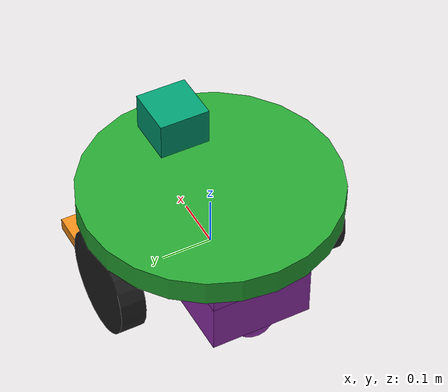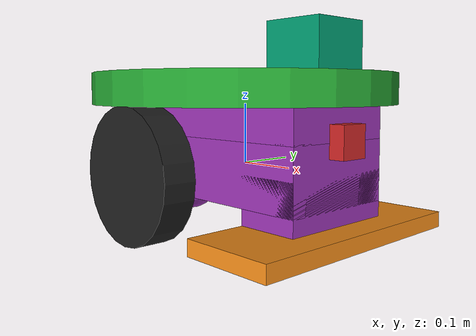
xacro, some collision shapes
<?xml version='1.0'?>

<robot name="my_robot" xmlns:xacro="http://www.ros.org/wiki/xacro">

  <xacro:include filename="$(find my_robot)/urdf/my_robot.gazebo" />

  <link name="robot_footprint"></link>

  <joint name="robot_footprint_joint" type="fixed">
    <origin xyz="0 0 0" rpy="0 0 0" />
    <parent link="robot_footprint"/>
    <child link="chassis" />
  </joint>

  <link name='chassis'>
    <pose>0 0 0.1 0 0 0</pose>

    <inertial>
      <mass value="15.0"/>
      <origin xyz="0.0 0 0" rpy=" 0 0 0"/>
      <inertia
          ixx="0.1" ixy="0" ixz="0"
          iyy="0.1" iyz="0"
          izz="0.1"
      />
    </inertial>

    <collision name='collision'>
      <origin xyz="0 0 0" rpy=" 0 0 0"/>
      <geometry>
        <box size=".4 .2 .1"/>
      </geometry>
    </collision>

    <visual name='chassis_visual'>
      <origin xyz="0 0 0" rpy=" 0 0 0"/>
      <geometry>
        <box size=".4 .2 .1"/>
      </geometry>
    </visual>

    <collision name='back_caster_collision'>
      <origin xyz="-0.15 0 -0.05" rpy=" 0 0 0"/>
      <geometry>
        <sphere radius="0.0499"/>
      </geometry>
    </collision>

    <visual name='back_caster_visual'>
      <origin xyz="-0.15 0 -0.05" rpy=" 0 0 0"/>
      <geometry>
        <sphere radius="0.05"/>
      </geometry>
    </visual>

  </link>

  <link name='left_wheel'>
    <inertial>
      <mass value="5.0"/>
      <origin xyz="0.0 0 0" rpy=" 0 1.5707 1.5707"/>
      <inertia
          ixx="0.1" ixy="0" ixz="0"
          iyy="0.1" iyz="0"
          izz="0.1"
      />
    </inertial>

    <collision name='collision'>
      <origin xyz="0 0 0" rpy=" 0 1.5707 1.5707"/>
      <geometry>
        <cylinder radius='.101' length='.05'/>
      </geometry>
    </collision>

    <visual name='left_wheel_visual'>
      <origin xyz="0 0 0" rpy=" 0 1.5707 1.5707"/>
      <geometry>
        <cylinder radius='.101' length='.05'/>
      </geometry>
    </visual>
  </link>

  <joint type="continuous" name="left_wheel_hinge">
    <origin xyz="0 0.21 0" rpy="0 0 0"/>
    <child link="left_wheel"/>
    <parent link="chassis"/>
    <axis xyz="0 1 0" rpy="0 0 0"/>
    <limit effort="10000" velocity="1000"/>
    <dynamics damping="1.0" friction="1.0"/>
  </joint>

  <link name='right_wheel'>
    <inertial>
      <mass value="5.0"/>
      <origin xyz="0.0 0 0" rpy=" 0 1.5707 1.5707"/>
      <inertia
          ixx="0.1" ixy="0" ixz="0"
          iyy="0.1" iyz="0"
          izz="0.1"
      />
    </inertial>

    <collision name='collision'>
      <origin xyz="0 0 0" rpy=" 0 1.5707 1.5707"/>
      <geometry>
        <cylinder radius='.101' length='.05'/>
      </geometry>
    </collision>

    <visual name='right_wheel_visual'>
      <origin xyz="0 0 0" rpy=" 0 1.5707 1.5707"/>
      <geometry>
        <cylinder radius='.101' length='.05'/>
      </geometry>
    </visual>
  </link>

  <joint type="continuous" name="right_wheel_hinge">
    <origin xyz="0 -0.21 0" rpy="0 0 0"/>
    <child link="right_wheel"/>
    <parent link="chassis"/>
    <axis xyz="0 1 0" rpy="0 0 0"/>
    <limit effort="10000" velocity="1000"/>
    <dynamics damping="1.0" friction="1.0"/>
  </joint>

  <link name='top1'>
    <pose>0 0 0.1 0 0 0</pose>
    <inertial>
      <mass value="0.1"/>
      <origin xyz="0.0 0 0" rpy=" 0 0 0"/>
      <inertia
          ixx="1e-6" ixy="0" ixz="0"
          iyy="1e-6" iyz="0"
          izz="1e-6"
      />
    </inertial>

    <collision name='collision'>
      <origin xyz="0 0 0" rpy=" 0 0 0"/>
      <geometry>
        <box size=".4 .2 .1"/>
      </geometry>
    </collision>

    <visual name='top1_visual'>
      <origin xyz="0 0 0" rpy=" 0 0 0"/>
      <geometry>
        <box size=".4 .2 .1"/>
      </geometry>
    </visual>
  </link>

  <joint type="fixed" name="top1_joint">
    <origin xyz="0 0 0.098" rpy="0 0 0"/>
    <child link="top1"/>
    <parent link="chassis"/>
    <axis xyz="0 1 0" rpy="0 0 0"/>
  </joint>

  <link name='top_cylinder'>
    <pose>0 0 0.1 0 0 0</pose>
    <inertial>
      <mass value="0.1"/>
      <origin xyz="0.0 0 0" rpy=" 0 0 0"/>
      <inertia
          ixx="1e-6" ixy="0" ixz="0"
          iyy="1e-6" iyz="0"
          izz="1e-6"
      />
    </inertial>

    <collision name='collision'>
      <origin xyz="0 0 0" rpy=" 0 0 0"/>
      <geometry>
        <cylinder radius='.25' length='.05'/>
      </geometry>
    </collision>

    <visual name='top_cylinder_visual'>
      <origin xyz="0 0 0" rpy=" 0 0 0"/>
      <geometry>
        <cylinder radius='.25' length='.05'/>
      </geometry>
    </visual>

  </link>

  <joint type="fixed" name="top_cylinder_joint">
    <origin xyz="0 0 0.125" rpy="0 0 0"/>
    <child link="top_cylinder"/>
    <parent link="chassis"/>
    <axis xyz="0 1 0" rpy="0 0 0"/>
  </joint>

  <link name='front_beam'>

    <pose>0 0 0.1 0 0 0</pose>
    <inertial>
      <mass value="0.1"/>
      <origin xyz="0.0 0 0" rpy=" 0 0 0"/>
      <inertia
          ixx="1e-6" ixy="0" ixz="0"
          iyy="1e-6" iyz="0"
          izz="1e-6"
      />
    </inertial>

     <collision name='collision'>
      <origin xyz="0 0 0" rpy=" 0 0 0"/>
      <geometry>
        <box size=".1 .2 .1"/>
      </geometry>
    </collision>

    <visual name='front_beam_visual'>
      <origin xyz="0 0 0" rpy=" 0 0 0"/>
      <geometry>
        <box size=".1 .2 .1"/>
      </geometry>
    </visual>

  </link>

  <joint type="fixed" name="front_beam_joint">
    <origin xyz="0.15 0 -0.05" rpy="0 0 0"/>
    <child link="front_beam"/>
    <parent link="chassis"/>
    <axis xyz="0 1 0" rpy="0 0 0"/>
  </joint>

  <link name='front_wiper'>

    <pose>0 0 0.1 0 0 0</pose>
    <inertial>
      <mass value="0.1"/>
      <origin xyz="0.0 0 0" rpy=" 0 0 0"/>
      <inertia
          ixx="1e-6" ixy="0" ixz="0"
          iyy="1e-6" iyz="0"
          izz="1e-6"
      />
    </inertial>

     <collision name='collision'>
      <origin xyz="0 0 0" rpy=" 0 0 0"/>
      <geometry>
        <box size=".155 .4 .025"/>
      </geometry>
    </collision>

    <visual name='front_wiper_visual'>
      <origin xyz="0 0 0" rpy=" 0 0 0"/>
      <geometry>
        <box size=".149 .4 .025"/>
      </geometry>
    </visual>

  </link>

  <joint type="fixed" name="front_wiper_joint">
    <origin xyz="0.175 0 -0.0875" rpy="0 0 0"/>
    <child link="front_wiper"/>
    <parent link="chassis"/>
    <axis xyz="0 1 0" rpy="0 0 0"/>
  </joint>

  <link name='camera'>
    <inertial>
      <mass value="0.1"/>
      <origin xyz="0.0 0 0" rpy=" 0 0 0"/>
      <inertia
          ixx="1e-6" ixy="0" ixz="0"
          iyy="1e-6" iyz="0"
          izz="1e-6"
      />
    </inertial>

    <collision name='collision'>
      <origin xyz="0 0 0" rpy=" 0 0 0"/>
      <geometry>
        <box size=".05 .05 .05"/>
      </geometry>
    </collision>

    <visual name='camera_visual'>
      <origin xyz="0 0 0" rpy=" 0 0 0"/>
      <geometry>
        <box size=".05 .05 .05"/>
      </geometry>
    </visual>
  </link>

  <joint type="fixed" name="camera_joint">
    <origin xyz="0.2 0 0.05" rpy="0 0 0"/>
    <child link="camera"/>
    <parent link="chassis"/>
    <axis xyz="0 1 0" rpy="0 0 0"/>
  </joint>

<!-- For RGB-D camera in URDF file, we need to add an extra link and an extra joint to the camera link in order to align the camera image in Gazebo properly with the robot.  -->
  <joint name="camera_optical_joint" type="fixed">
    <origin xyz="0 0 0" rpy="-1.5707 0 -1.5707"/>
    <parent link="camera"/>
    <child link="camera_link_optical"/>
  </joint>

  <link name="camera_link_optical">
  </link>

  <link name='hokuyo'>
    <inertial>
      <mass value="1e-5"/>
      <origin xyz="0.0 0 0" rpy=" 0 0 0"/>
      <inertia
          ixx="1e-6" ixy="0" ixz="0"
          iyy="1e-6" iyz="0"
          izz="1e-6"
      />
    </inertial>

    <collision name='collision'>
      <origin xyz="0 0 0" rpy=" 0 0 0"/>
      <geometry>
        <box size="0.1 0.1 0.1"/>
      </geometry>
    </collision>
    <visual>
      <origin xyz="0 0 0" rpy=" 0 0 0"/>
      <geometry>
        <mesh filename="package://my_robot/meshes/hokuyo.dae"/>
      </geometry>
    </visual>
  </link>

  <joint type="fixed" name="hokuyo_joint">
    <origin xyz="0.15 0 0.175" rpy="0 0 0"/>
    <child link="hokuyo"/>
    <parent link="chassis"/>
    <axis xyz="0 1 0" rpy="0 0 0"/>
  </joint>

  <gazebo reference="chassis">
    <material>Gazebo/Purple</material>
  </gazebo>

  <gazebo reference="left_wheel">
    <material>Gazebo/Black</material>
  </gazebo>

  <gazebo reference="right_wheel">
    <material>Gazebo/Black</material>
  </gazebo>

  <gazebo reference="top_cylinder">
    <material>Gazebo/Green</material>
  </gazebo>

  <gazebo reference="top1">
    <material>Gazebo/Purple</material>
  </gazebo>

  <gazebo reference="front_beam">
    <material>Gazebo/Purple</material>
  </gazebo>

  <gazebo reference="front_wiper">
    <material>Gazebo/Orange</material>
  </gazebo>

  <gazebo reference="camera">
    <material>Gazebo/Red</material>
  </gazebo>

</robot>
